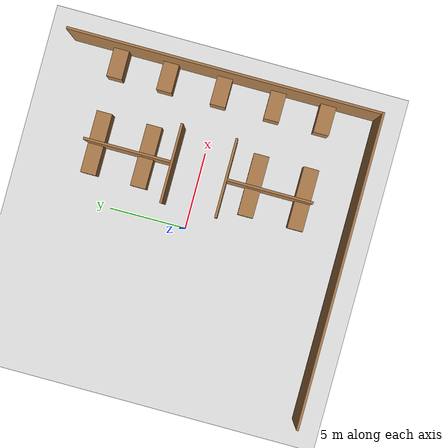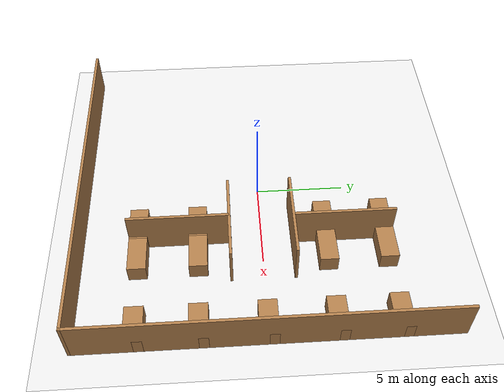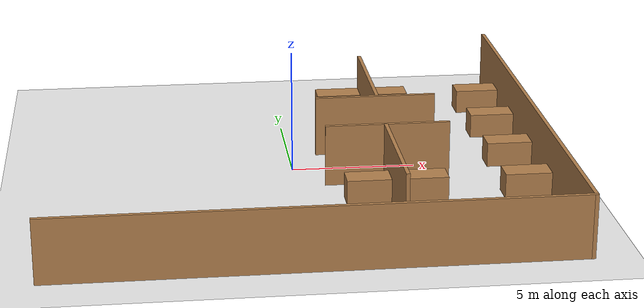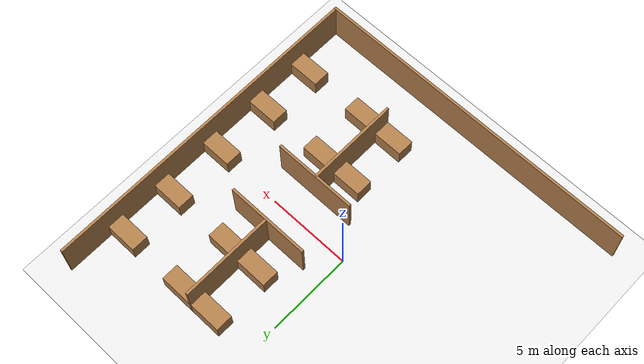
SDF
<sdf version="1.7">
 <world name="default">
  <model name="ground_plane">
   <static>1</static>
   <link name="link">
    <collision name="collision">
     <geometry><plane><normal>0 0 1</normal><size>100 100</size></plane></geometry>
     <surface>
      <contact><collide_bitmask>65535</collide_bitmask></contact>
      <friction><ode><mu>100</mu><mu2>50</mu2></ode></friction>
     </surface>
    </collision>
    <visual name="visual">
     <cast_shadows>0</cast_shadows>
     <geometry><plane><normal>0 0 1</normal><size>100 100</size></plane></geometry>
     <material>
      <script><uri>file://media/materials/scripts/gazebo.material</uri><name>Gazebo/White</name></script>
     </material>
    </visual>
   </link>
  </model>
  <model name="warehouse">
   <link name="Wall_10">
    <pose>-1.7 3.65 0 0 0 -1.5708</pose>
    <inertial>
     <mass>1</mass>
     <inertia><ixx>1</ixx><ixy>0</ixy><ixz>0</ixz><iyy>1</iyy><iyz>0</iyz><izz>1</izz></inertia>
    </inertial>
    <visual name="Wall_10_Visual">
     <pose>0 0 1.25 0 -0 0</pose>
     <geometry><box><size>5 0.15 2.5</size></box></geometry>
     <material>
      <script><uri>file://media/materials/scripts/gazebo.material</uri><name>Gazebo/Wood</name></script>
      <ambient>1 1 1 1</ambient>
      <shader type="pixel"><normal_map>__default__</normal_map></shader>
      <diffuse>1 1 1 1</diffuse>
      <specular>0.2 0.2 0.2 1</specular>
      <emissive>0 0 0 1</emissive>
     </material>
     <meta><layer>0</layer></meta>
    </visual>
    <collision name="Wall_10_Collision">
     <pose>0 0 1.25 0 -0 0</pose>
     <geometry><box><size>5 0.15 2.5</size></box></geometry>
     <surface>
      <friction>
       <ode><mu>1</mu><mu2>1</mu2><fdir1>0 0 0</fdir1><slip1>0</slip1><slip2>0</slip2></ode>
       <torsional>
        <coefficient>1</coefficient>
        <patch_radius>0</patch_radius>
        <surface_radius>0</surface_radius>
        <use_patch_radius>1</use_patch_radius>
        <ode><slip>0</slip></ode>
       </torsional>
      </friction>
      <bounce><restitution_coefficient>0</restitution_coefficient><threshold>1e+06</threshold></bounce>
      <contact>
       <collide_without_contact>0</collide_without_contact>
       <collide_without_contact_bitmask>1</collide_without_contact_bitmask>
       <collide_bitmask>1</collide_bitmask>
       <ode>
        <soft_cfm>0</soft_cfm>
        <soft_erp>0.2</soft_erp>
        <kp>1e+13</kp>
        <kd>1</kd>
        <max_vel>0.01</max_vel>
        <min_depth>0</min_depth>
       </ode>
       <bullet>
        <split_impulse>1</split_impulse>
        <split_impulse_penetration_threshold>-0.01</split_impulse_penetration_threshold>
        <soft_cfm>0</soft_cfm>
        <soft_erp>0.2</soft_erp>
        <kp>1e+13</kp>
        <kd>1</kd>
       </bullet>
      </contact>
     </surface>
    </collision>
   </link>
   <link name="Wall_22">
    <pose>1.75 3.65 0 0 0 -1.5708</pose>
    <inertial>
     <mass>1</mass>
     <inertia><ixx>1</ixx><ixy>0</ixy><ixz>0</ixz><iyy>1</iyy><iyz>0</iyz><izz>1</izz></inertia>
    </inertial>
    <visual name="Wall_22_Visual">
     <pose>0 0 1.25 0 -0 0</pose>
     <geometry><box><size>5 0.15 2.5</size></box></geometry>
     <material>
      <script><uri>file://media/materials/scripts/gazebo.material</uri><name>Gazebo/Wood</name></script>
      <ambient>1 1 1 1</ambient>
      <shader type="pixel"><normal_map>__default__</normal_map></shader>
      <diffuse>1 1 1 1</diffuse>
      <specular>0.2 0.2 0.2 1</specular>
      <emissive>0 0 0 1</emissive>
     </material>
     <meta><layer>0</layer></meta>
    </visual>
    <collision name="Wall_22_Collision">
     <pose>0 0 1.25 0 -0 0</pose>
     <geometry><box><size>5 0.15 2.5</size></box></geometry>
     <surface>
      <friction>
       <ode><mu>1</mu><mu2>1</mu2><fdir1>0 0 0</fdir1><slip1>0</slip1><slip2>0</slip2></ode>
       <torsional>
        <coefficient>1</coefficient>
        <patch_radius>0</patch_radius>
        <surface_radius>0</surface_radius>
        <use_patch_radius>1</use_patch_radius>
        <ode><slip>0</slip></ode>
       </torsional>
      </friction>
      <bounce><restitution_coefficient>0</restitution_coefficient><threshold>1e+06</threshold></bounce>
      <contact>
       <collide_without_contact>0</collide_without_contact>
       <collide_without_contact_bitmask>1</collide_without_contact_bitmask>
       <collide_bitmask>1</collide_bitmask>
       <ode>
        <soft_cfm>0</soft_cfm>
        <soft_erp>0.2</soft_erp>
        <kp>1e+13</kp>
        <kd>1</kd>
        <max_vel>0.01</max_vel>
        <min_depth>0</min_depth>
       </ode>
       <bullet>
        <split_impulse>1</split_impulse>
        <split_impulse_penetration_threshold>-0.01</split_impulse_penetration_threshold>
        <soft_cfm>0</soft_cfm>
        <soft_erp>0.2</soft_erp>
        <kp>1e+13</kp>
        <kd>1</kd>
       </bullet>
      </contact>
     </surface>
    </collision>
   </link>
   <link name="Wall_25">
    <pose>-4.5 3.725 0 0 -0 3.14159</pose>
    <inertial>
     <mass>1</mass>
     <inertia><ixx>1</ixx><ixy>0</ixy><ixz>0</ixz><iyy>1</iyy><iyz>0</iyz><izz>1</izz></inertia>
    </inertial>
    <visual name="Wall_25_Visual">
     <pose>0 0 1.25 0 -0 0</pose>
     <geometry><box><size>5.5 0.15 2.5</size></box></geometry>
     <material>
      <script><uri>file://media/materials/scripts/gazebo.material</uri><name>Gazebo/Wood</name></script>
      <ambient>1 1 1 1</ambient>
      <shader type="pixel"><normal_map>__default__</normal_map></shader>
      <diffuse>1 1 1 1</diffuse>
      <specular>0.2 0.2 0.2 1</specular>
      <emissive>0 0 0 1</emissive>
     </material>
     <meta><layer>0</layer></meta>
    </visual>
    <collision name="Wall_25_Collision">
     <pose>0 0 1.25 0 -0 0</pose>
     <geometry><box><size>5.5 0.15 2.5</size></box></geometry>
     <surface>
      <friction>
       <ode><mu>1</mu><mu2>1</mu2><fdir1>0 0 0</fdir1><slip1>0</slip1><slip2>0</slip2></ode>
       <torsional>
        <coefficient>1</coefficient>
        <patch_radius>0</patch_radius>
        <surface_radius>0</surface_radius>
        <use_patch_radius>1</use_patch_radius>
        <ode><slip>0</slip></ode>
       </torsional>
      </friction>
      <bounce><restitution_coefficient>0</restitution_coefficient><threshold>1e+06</threshold></bounce>
      <contact>
       <collide_without_contact>0</collide_without_contact>
       <collide_without_contact_bitmask>1</collide_without_contact_bitmask>
       <collide_bitmask>1</collide_bitmask>
       <ode>
        <soft_cfm>0</soft_cfm>
        <soft_erp>0.2</soft_erp>
        <kp>1e+13</kp>
        <kd>1</kd>
        <max_vel>0.01</max_vel>
        <min_depth>0</min_depth>
       </ode>
       <bullet>
        <split_impulse>1</split_impulse>
        <split_impulse_penetration_threshold>-0.01</split_impulse_penetration_threshold>
        <soft_cfm>0</soft_cfm>
        <soft_erp>0.2</soft_erp>
        <kp>1e+13</kp>
        <kd>1</kd>
       </bullet>
      </contact>
     </surface>
    </collision>
   </link>
   <link name="Wall_34">
    <pose>4.5 3.575 0 0 -0 0</pose>
    <inertial>
     <mass>1</mass>
     <inertia><ixx>1</ixx><ixy>0</ixy><ixz>0</ixz><iyy>1</iyy><iyz>0</iyz><izz>1</izz></inertia>
    </inertial>
    <visual name="Wall_34_Visual">
     <pose>0 0 1.25 0 -0 0</pose>
     <geometry><box><size>5.5 0.15 2.5</size></box></geometry>
     <material>
      <script><uri>file://media/materials/scripts/gazebo.material</uri><name>Gazebo/Wood</name></script>
      <ambient>1 1 1 1</ambient>
      <shader type="pixel"><normal_map>__default__</normal_map></shader>
      <diffuse>1 1 1 1</diffuse>
      <specular>0.2 0.2 0.2 1</specular>
      <emissive>0 0 0 1</emissive>
     </material>
     <meta><layer>0</layer></meta>
    </visual>
    <collision name="Wall_34_Collision">
     <pose>0 0 1.25 0 -0 0</pose>
     <geometry><box><size>5.5 0.15 2.5</size></box></geometry>
     <surface>
      <friction>
       <ode><mu>1</mu><mu2>1</mu2><fdir1>0 0 0</fdir1><slip1>0</slip1><slip2>0</slip2></ode>
       <torsional>
        <coefficient>1</coefficient>
        <patch_radius>0</patch_radius>
        <surface_radius>0</surface_radius>
        <use_patch_radius>1</use_patch_radius>
        <ode><slip>0</slip></ode>
       </torsional>
      </friction>
      <bounce><restitution_coefficient>0</restitution_coefficient><threshold>1e+06</threshold></bounce>
      <contact>
       <collide_without_contact>0</collide_without_contact>
       <collide_without_contact_bitmask>1</collide_without_contact_bitmask>
       <collide_bitmask>1</collide_bitmask>
       <ode>
        <soft_cfm>0</soft_cfm>
        <soft_erp>0.2</soft_erp>
        <kp>1e+13</kp>
        <kd>1</kd>
        <max_vel>0.01</max_vel>
        <min_depth>0</min_depth>
       </ode>
       <bullet>
        <split_impulse>1</split_impulse>
        <split_impulse_penetration_threshold>-0.01</split_impulse_penetration_threshold>
        <soft_cfm>0</soft_cfm>
        <soft_erp>0.2</soft_erp>
        <kp>1e+13</kp>
        <kd>1</kd>
       </bullet>
      </contact>
     </surface>
    </collision>
   </link>
   <link name="Wall_5">
    <pose>9.925 -0 0 0 -0 1.5708</pose>
    <visual name="Wall_5_Visual">
     <pose>0 0 1.25 0 -0 0</pose>
     <geometry><box><size>20 0.15 2.5</size></box></geometry>
     <material>
      <script><uri>file://media/materials/scripts/gazebo.material</uri><name>Gazebo/Wood</name></script>
      <ambient>1 1 1 1</ambient>
      <shader type="pixel"/>
     </material>
     <meta><layer>0</layer></meta>
    </visual>
    <collision name="Wall_5_Collision">
     <pose>0 0 1.25 0 -0 0</pose>
     <geometry><box><size>20 0.15 2.5</size></box></geometry>
     <surface>
      <friction>
       <ode><mu>1</mu><mu2>1</mu2><fdir1>0 0 0</fdir1><slip1>0</slip1><slip2>0</slip2></ode>
       <torsional>
        <coefficient>1</coefficient>
        <patch_radius>0</patch_radius>
        <surface_radius>0</surface_radius>
        <use_patch_radius>1</use_patch_radius>
        <ode><slip>0</slip></ode>
       </torsional>
      </friction>
      <bounce><restitution_coefficient>0</restitution_coefficient><threshold>1e+06</threshold></bounce>
      <contact>
       <collide_without_contact>0</collide_without_contact>
       <collide_without_contact_bitmask>1</collide_without_contact_bitmask>
       <collide_bitmask>1</collide_bitmask>
       <ode>
        <soft_cfm>0</soft_cfm>
        <soft_erp>0.2</soft_erp>
        <kp>1e+13</kp>
        <kd>1</kd>
        <max_vel>0.01</max_vel>
        <min_depth>0</min_depth>
       </ode>
       <bullet>
        <split_impulse>1</split_impulse>
        <split_impulse_penetration_threshold>-0.01</split_impulse_penetration_threshold>
        <soft_cfm>0</soft_cfm>
        <soft_erp>0.2</soft_erp>
        <kp>1e+13</kp>
        <kd>1</kd>
       </bullet>
      </contact>
     </surface>
    </collision>
   </link>
   <link name="Wall_6">
    <pose>0 9.925 0 0 -0 3.14159</pose>
    <visual name="Wall_6_Visual">
     <pose>0 0 1.25 0 -0 0</pose>
     <geometry><box><size>20 0.15 2.5</size></box></geometry>
     <material>
      <script><uri>file://media/materials/scripts/gazebo.material</uri><name>Gazebo/Wood</name></script>
      <ambient>1 1 1 1</ambient>
      <shader type="pixel"/>
     </material>
     <meta><layer>0</layer></meta>
    </visual>
    <collision name="Wall_6_Collision">
     <pose>0 0 1.25 0 -0 0</pose>
     <geometry><box><size>20 0.15 2.5</size></box></geometry>
     <surface>
      <friction>
       <ode><mu>1</mu><mu2>1</mu2><fdir1>0 0 0</fdir1><slip1>0</slip1><slip2>0</slip2></ode>
       <torsional>
        <coefficient>1</coefficient>
        <patch_radius>0</patch_radius>
        <surface_radius>0</surface_radius>
        <use_patch_radius>1</use_patch_radius>
        <ode><slip>0</slip></ode>
       </torsional>
      </friction>
      <bounce><restitution_coefficient>0</restitution_coefficient><threshold>1e+06</threshold></bounce>
      <contact>
       <collide_without_contact>0</collide_without_contact>
       <collide_without_contact_bitmask>1</collide_without_contact_bitmask>
       <collide_bitmask>1</collide_bitmask>
       <ode>
        <soft_cfm>0</soft_cfm>
        <soft_erp>0.2</soft_erp>
        <kp>1e+13</kp>
        <kd>1</kd>
        <max_vel>0.01</max_vel>
        <min_depth>0</min_depth>
       </ode>
       <bullet>
        <split_impulse>1</split_impulse>
        <split_impulse_penetration_threshold>-0.01</split_impulse_penetration_threshold>
        <soft_cfm>0</soft_cfm>
        <soft_erp>0.2</soft_erp>
        <kp>1e+13</kp>
        <kd>1</kd>
       </bullet>
      </contact>
     </surface>
    </collision>
   </link>
   <link name="link_1_clone_12">
    <inertial>
     <mass>1</mass>
     <inertia>
      <ixx>0.166667</ixx>
      <ixy>0</ixy>
      <ixz>0</ixz>
      <iyy>0.166667</iyy>
      <iyz>0</iyz>
      <izz>0.166667</izz>
     </inertia>
    </inertial>
    <pose>-6.75 4.75 0.5 0 -0 3.14</pose>
    <visual name="visual">
     <geometry><box><size>1 2 1</size></box></geometry>
     <material>
      <lighting>1</lighting>
      <script><uri>file://media/materials/scripts/gazebo.material</uri><name>Gazebo/Wood</name></script>
      <shader type="pixel"><normal_map>__default__</normal_map></shader>
      <ambient>0.3 0.3 0.3 1</ambient>
      <diffuse>0.7 0.7 0.7 1</diffuse>
      <specular>0.01 0.01 0.01 1</specular>
      <emissive>0 0 0 1</emissive>
     </material>
    </visual>
    <collision name="collision">
     <geometry><box><size>1 2 1</size></box></geometry>
     <surface>
      <friction>
       <ode><mu>1</mu><mu2>1</mu2><fdir1>0 0 0</fdir1><slip1>0</slip1><slip2>0</slip2></ode>
       <torsional>
        <coefficient>1</coefficient>
        <patch_radius>0</patch_radius>
        <surface_radius>0</surface_radius>
        <use_patch_radius>1</use_patch_radius>
        <ode><slip>0</slip></ode>
       </torsional>
      </friction>
      <bounce><restitution_coefficient>0</restitution_coefficient><threshold>1e+06</threshold></bounce>
      <contact>
       <collide_without_contact>0</collide_without_contact>
       <collide_without_contact_bitmask>1</collide_without_contact_bitmask>
       <collide_bitmask>1</collide_bitmask>
       <ode>
        <soft_cfm>0</soft_cfm>
        <soft_erp>0.2</soft_erp>
        <kp>1e+13</kp>
        <kd>1</kd>
        <max_vel>0.01</max_vel>
        <min_depth>0</min_depth>
       </ode>
       <bullet>
        <split_impulse>1</split_impulse>
        <split_impulse_penetration_threshold>-0.01</split_impulse_penetration_threshold>
        <soft_cfm>0</soft_cfm>
        <soft_erp>0.2</soft_erp>
        <kp>1e+13</kp>
        <kd>1</kd>
       </bullet>
      </contact>
     </surface>
    </collision>
   </link>
   <link name="link_1_clone_13">
    <inertial>
     <mass>1</mass>
     <inertia>
      <ixx>0.166667</ixx>
      <ixy>0</ixy>
      <ixz>0</ixz>
      <iyy>0.166667</iyy>
      <iyz>0</iyz>
      <izz>0.166667</izz>
     </inertia>
    </inertial>
    <pose>-3.5 4.75 0.5 0 -0 3.14</pose>
    <visual name="visual">
     <geometry><box><size>1 2 1</size></box></geometry>
     <material>
      <lighting>1</lighting>
      <script><uri>file://media/materials/scripts/gazebo.material</uri><name>Gazebo/Wood</name></script>
      <shader type="pixel"><normal_map>__default__</normal_map></shader>
      <ambient>0.3 0.3 0.3 1</ambient>
      <diffuse>0.7 0.7 0.7 1</diffuse>
      <specular>0.01 0.01 0.01 1</specular>
      <emissive>0 0 0 1</emissive>
     </material>
    </visual>
    <collision name="collision">
     <geometry><box><size>1 2 1</size></box></geometry>
     <surface>
      <friction>
       <ode><mu>1</mu><mu2>1</mu2><fdir1>0 0 0</fdir1><slip1>0</slip1><slip2>0</slip2></ode>
       <torsional>
        <coefficient>1</coefficient>
        <patch_radius>0</patch_radius>
        <surface_radius>0</surface_radius>
        <use_patch_radius>1</use_patch_radius>
        <ode><slip>0</slip></ode>
       </torsional>
      </friction>
      <bounce><restitution_coefficient>0</restitution_coefficient><threshold>1e+06</threshold></bounce>
      <contact>
       <collide_without_contact>0</collide_without_contact>
       <collide_without_contact_bitmask>1</collide_without_contact_bitmask>
       <collide_bitmask>1</collide_bitmask>
       <ode>
        <soft_cfm>0</soft_cfm>
        <soft_erp>0.2</soft_erp>
        <kp>1e+13</kp>
        <kd>1</kd>
        <max_vel>0.01</max_vel>
        <min_depth>0</min_depth>
       </ode>
       <bullet>
        <split_impulse>1</split_impulse>
        <split_impulse_penetration_threshold>-0.01</split_impulse_penetration_threshold>
        <soft_cfm>0</soft_cfm>
        <soft_erp>0.2</soft_erp>
        <kp>1e+13</kp>
        <kd>1</kd>
       </bullet>
      </contact>
     </surface>
    </collision>
   </link>
   <link name="link_1_clone_14">
    <inertial>
     <mass>1</mass>
     <inertia>
      <ixx>0.166667</ixx>
      <ixy>0</ixy>
      <ixz>0</ixz>
      <iyy>0.166667</iyy>
      <iyz>0</iyz>
      <izz>0.166667</izz>
     </inertia>
    </inertial>
    <pose>3.5 4.75 0.5 0 -0 3.14</pose>
    <visual name="visual">
     <geometry><box><size>1 2 1</size></box></geometry>
     <material>
      <lighting>1</lighting>
      <script><uri>file://media/materials/scripts/gazebo.material</uri><name>Gazebo/Wood</name></script>
      <shader type="pixel"><normal_map>__default__</normal_map></shader>
      <ambient>0.3 0.3 0.3 1</ambient>
      <diffuse>0.7 0.7 0.7 1</diffuse>
      <specular>0.01 0.01 0.01 1</specular>
      <emissive>0 0 0 1</emissive>
     </material>
    </visual>
    <collision name="collision">
     <geometry><box><size>1 2 1</size></box></geometry>
     <surface>
      <friction>
       <ode><mu>1</mu><mu2>1</mu2><fdir1>0 0 0</fdir1><slip1>0</slip1><slip2>0</slip2></ode>
       <torsional>
        <coefficient>1</coefficient>
        <patch_radius>0</patch_radius>
        <surface_radius>0</surface_radius>
        <use_patch_radius>1</use_patch_radius>
        <ode><slip>0</slip></ode>
       </torsional>
      </friction>
      <bounce><restitution_coefficient>0</restitution_coefficient><threshold>1e+06</threshold></bounce>
      <contact>
       <collide_without_contact>0</collide_without_contact>
       <collide_without_contact_bitmask>1</collide_without_contact_bitmask>
       <collide_bitmask>1</collide_bitmask>
       <ode>
        <soft_cfm>0</soft_cfm>
        <soft_erp>0.2</soft_erp>
        <kp>1e+13</kp>
        <kd>1</kd>
        <max_vel>0.01</max_vel>
        <min_depth>0</min_depth>
       </ode>
       <bullet>
        <split_impulse>1</split_impulse>
        <split_impulse_penetration_threshold>-0.01</split_impulse_penetration_threshold>
        <soft_cfm>0</soft_cfm>
        <soft_erp>0.2</soft_erp>
        <kp>1e+13</kp>
        <kd>1</kd>
       </bullet>
      </contact>
     </surface>
    </collision>
   </link>
   <link name="link_1_clone_15">
    <inertial>
     <mass>1</mass>
     <inertia>
      <ixx>0.166667</ixx>
      <ixy>0</ixy>
      <ixz>0</ixz>
      <iyy>0.166667</iyy>
      <iyz>0</iyz>
      <izz>0.166667</izz>
     </inertia>
    </inertial>
    <pose>6.75 4.75 0.5 0 -0 3.14</pose>
    <visual name="visual">
     <geometry><box><size>1 2 1</size></box></geometry>
     <material>
      <lighting>1</lighting>
      <script><uri>file://media/materials/scripts/gazebo.material</uri><name>Gazebo/Wood</name></script>
      <shader type="pixel"><normal_map>__default__</normal_map></shader>
      <ambient>0.3 0.3 0.3 1</ambient>
      <diffuse>0.7 0.7 0.7 1</diffuse>
      <specular>0.01 0.01 0.01 1</specular>
      <emissive>0 0 0 1</emissive>
     </material>
    </visual>
    <collision name="collision">
     <geometry><box><size>1 2 1</size></box></geometry>
     <surface>
      <friction>
       <ode><mu>1</mu><mu2>1</mu2><fdir1>0 0 0</fdir1><slip1>0</slip1><slip2>0</slip2></ode>
       <torsional>
        <coefficient>1</coefficient>
        <patch_radius>0</patch_radius>
        <surface_radius>0</surface_radius>
        <use_patch_radius>1</use_patch_radius>
        <ode><slip>0</slip></ode>
       </torsional>
      </friction>
      <bounce><restitution_coefficient>0</restitution_coefficient><threshold>1e+06</threshold></bounce>
      <contact>
       <collide_without_contact>0</collide_without_contact>
       <collide_without_contact_bitmask>1</collide_without_contact_bitmask>
       <collide_bitmask>1</collide_bitmask>
       <ode>
        <soft_cfm>0</soft_cfm>
        <soft_erp>0.2</soft_erp>
        <kp>1e+13</kp>
        <kd>1</kd>
        <max_vel>0.01</max_vel>
        <min_depth>0</min_depth>
       </ode>
       <bullet>
        <split_impulse>1</split_impulse>
        <split_impulse_penetration_threshold>-0.01</split_impulse_penetration_threshold>
        <soft_cfm>0</soft_cfm>
        <soft_erp>0.2</soft_erp>
        <kp>1e+13</kp>
        <kd>1</kd>
       </bullet>
      </contact>
     </surface>
    </collision>
   </link>
   <link name="link_1_clone_16">
    <inertial>
     <mass>1</mass>
     <inertia>
      <ixx>0.166667</ixx>
      <ixy>0</ixy>
      <ixz>0</ixz>
      <iyy>0.166667</iyy>
      <iyz>0</iyz>
      <izz>0.166667</izz>
     </inertia>
    </inertial>
    <pose>-6.75 2.75 0.5 0 -0 3.14</pose>
    <visual name="visual">
     <geometry><box><size>1 2 1</size></box></geometry>
     <material>
      <lighting>1</lighting>
      <script><uri>file://media/materials/scripts/gazebo.material</uri><name>Gazebo/Wood</name></script>
      <shader type="pixel"><normal_map>__default__</normal_map></shader>
      <ambient>0.3 0.3 0.3 1</ambient>
      <diffuse>0.7 0.7 0.7 1</diffuse>
      <specular>0.01 0.01 0.01 1</specular>
      <emissive>0 0 0 1</emissive>
     </material>
    </visual>
    <collision name="collision">
     <geometry><box><size>1 2 1</size></box></geometry>
     <surface>
      <friction>
       <ode><mu>1</mu><mu2>1</mu2><fdir1>0 0 0</fdir1><slip1>0</slip1><slip2>0</slip2></ode>
       <torsional>
        <coefficient>1</coefficient>
        <patch_radius>0</patch_radius>
        <surface_radius>0</surface_radius>
        <use_patch_radius>1</use_patch_radius>
        <ode><slip>0</slip></ode>
       </torsional>
      </friction>
      <bounce><restitution_coefficient>0</restitution_coefficient><threshold>1e+06</threshold></bounce>
      <contact>
       <collide_without_contact>0</collide_without_contact>
       <collide_without_contact_bitmask>1</collide_without_contact_bitmask>
       <collide_bitmask>1</collide_bitmask>
       <ode>
        <soft_cfm>0</soft_cfm>
        <soft_erp>0.2</soft_erp>
        <kp>1e+13</kp>
        <kd>1</kd>
        <max_vel>0.01</max_vel>
        <min_depth>0</min_depth>
       </ode>
       <bullet>
        <split_impulse>1</split_impulse>
        <split_impulse_penetration_threshold>-0.01</split_impulse_penetration_threshold>
        <soft_cfm>0</soft_cfm>
        <soft_erp>0.2</soft_erp>
        <kp>1e+13</kp>
        <kd>1</kd>
       </bullet>
      </contact>
     </surface>
    </collision>
   </link>
   <link name="link_1_clone_17">
    <inertial>
     <mass>1</mass>
     <inertia>
      <ixx>0.166667</ixx>
      <ixy>0</ixy>
      <ixz>0</ixz>
      <iyy>0.166667</iyy>
      <iyz>0</iyz>
      <izz>0.166667</izz>
     </inertia>
    </inertial>
    <pose>-3.5 2.75 0.5 0 -0 3.14</pose>
    <visual name="visual">
     <geometry><box><size>1 2 1</size></box></geometry>
     <material>
      <lighting>1</lighting>
      <script><uri>file://media/materials/scripts/gazebo.material</uri><name>Gazebo/Wood</name></script>
      <shader type="pixel"><normal_map>__default__</normal_map></shader>
      <ambient>0.3 0.3 0.3 1</ambient>
      <diffuse>0.7 0.7 0.7 1</diffuse>
      <specular>0.01 0.01 0.01 1</specular>
      <emissive>0 0 0 1</emissive>
     </material>
    </visual>
    <collision name="collision">
     <geometry><box><size>1 2 1</size></box></geometry>
     <surface>
      <friction>
       <ode><mu>1</mu><mu2>1</mu2><fdir1>0 0 0</fdir1><slip1>0</slip1><slip2>0</slip2></ode>
       <torsional>
        <coefficient>1</coefficient>
        <patch_radius>0</patch_radius>
        <surface_radius>0</surface_radius>
        <use_patch_radius>1</use_patch_radius>
        <ode><slip>0</slip></ode>
       </torsional>
      </friction>
      <bounce><restitution_coefficient>0</restitution_coefficient><threshold>1e+06</threshold></bounce>
      <contact>
       <collide_without_contact>0</collide_without_contact>
       <collide_without_contact_bitmask>1</collide_without_contact_bitmask>
       <collide_bitmask>1</collide_bitmask>
       <ode>
        <soft_cfm>0</soft_cfm>
        <soft_erp>0.2</soft_erp>
        <kp>1e+13</kp>
        <kd>1</kd>
        <max_vel>0.01</max_vel>
        <min_depth>0</min_depth>
       </ode>
       <bullet>
        <split_impulse>1</split_impulse>
        <split_impulse_penetration_threshold>-0.01</split_impulse_penetration_threshold>
        <soft_cfm>0</soft_cfm>
        <soft_erp>0.2</soft_erp>
        <kp>1e+13</kp>
        <kd>1</kd>
       </bullet>
      </contact>
     </surface>
    </collision>
   </link>
   <link name="link_1_clone_18">
    <inertial>
     <mass>1</mass>
     <inertia>
      <ixx>0.166667</ixx>
      <ixy>0</ixy>
      <ixz>0</ixz>
      <iyy>0.166667</iyy>
      <iyz>0</iyz>
      <izz>0.166667</izz>
     </inertia>
    </inertial>
    <pose>3.5 2.75 0.5 0 -0 3.14</pose>
    <visual name="visual">
     <geometry><box><size>1 2 1</size></box></geometry>
     <material>
      <lighting>1</lighting>
      <script><uri>file://media/materials/scripts/gazebo.material</uri><name>Gazebo/Wood</name></script>
      <shader type="pixel"><normal_map>__default__</normal_map></shader>
      <ambient>0.3 0.3 0.3 1</ambient>
      <diffuse>0.7 0.7 0.7 1</diffuse>
      <specular>0.01 0.01 0.01 1</specular>
      <emissive>0 0 0 1</emissive>
     </material>
    </visual>
    <collision name="collision">
     <geometry><box><size>1 2 1</size></box></geometry>
     <surface>
      <friction>
       <ode><mu>1</mu><mu2>1</mu2><fdir1>0 0 0</fdir1><slip1>0</slip1><slip2>0</slip2></ode>
       <torsional>
        <coefficient>1</coefficient>
        <patch_radius>0</patch_radius>
        <surface_radius>0</surface_radius>
        <use_patch_radius>1</use_patch_radius>
        <ode><slip>0</slip></ode>
       </torsional>
      </friction>
      <bounce><restitution_coefficient>0</restitution_coefficient><threshold>1e+06</threshold></bounce>
      <contact>
       <collide_without_contact>0</collide_without_contact>
       <collide_without_contact_bitmask>1</collide_without_contact_bitmask>
       <collide_bitmask>1</collide_bitmask>
       <ode>
        <soft_cfm>0</soft_cfm>
        <soft_erp>0.2</soft_erp>
        <kp>1e+13</kp>
        <kd>1</kd>
        <max_vel>0.01</max_vel>
        <min_depth>0</min_depth>
       </ode>
       <bullet>
        <split_impulse>1</split_impulse>
        <split_impulse_penetration_threshold>-0.01</split_impulse_penetration_threshold>
        <soft_cfm>0</soft_cfm>
        <soft_erp>0.2</soft_erp>
        <kp>1e+13</kp>
        <kd>1</kd>
       </bullet>
      </contact>
     </surface>
    </collision>
   </link>
   <link name="link_1_clone_19">
    <inertial>
     <mass>1</mass>
     <inertia>
      <ixx>0.166667</ixx>
      <ixy>0</ixy>
      <ixz>0</ixz>
      <iyy>0.166667</iyy>
      <iyz>0</iyz>
      <izz>0.166667</izz>
     </inertia>
    </inertial>
    <pose>6.75 2.75 0.5 0 -0 3.14</pose>
    <visual name="visual">
     <geometry><box><size>1 2 1</size></box></geometry>
     <material>
      <lighting>1</lighting>
      <script><uri>file://media/materials/scripts/gazebo.material</uri><name>Gazebo/Wood</name></script>
      <shader type="pixel"><normal_map>__default__</normal_map></shader>
      <ambient>0.3 0.3 0.3 1</ambient>
      <diffuse>0.7 0.7 0.7 1</diffuse>
      <specular>0.01 0.01 0.01 1</specular>
      <emissive>0 0 0 1</emissive>
     </material>
    </visual>
    <collision name="collision">
     <geometry><box><size>1 2 1</size></box></geometry>
     <surface>
      <friction>
       <ode><mu>1</mu><mu2>1</mu2><fdir1>0 0 0</fdir1><slip1>0</slip1><slip2>0</slip2></ode>
       <torsional>
        <coefficient>1</coefficient>
        <patch_radius>0</patch_radius>
        <surface_radius>0</surface_radius>
        <use_patch_radius>1</use_patch_radius>
        <ode><slip>0</slip></ode>
       </torsional>
      </friction>
      <bounce><restitution_coefficient>0</restitution_coefficient><threshold>1e+06</threshold></bounce>
      <contact>
       <collide_without_contact>0</collide_without_contact>
       <collide_without_contact_bitmask>1</collide_without_contact_bitmask>
       <collide_bitmask>1</collide_bitmask>
       <ode>
        <soft_cfm>0</soft_cfm>
        <soft_erp>0.2</soft_erp>
        <kp>1e+13</kp>
        <kd>1</kd>
        <max_vel>0.01</max_vel>
        <min_depth>0</min_depth>
       </ode>
       <bullet>
        <split_impulse>1</split_impulse>
        <split_impulse_penetration_threshold>-0.01</split_impulse_penetration_threshold>
        <soft_cfm>0</soft_cfm>
        <soft_erp>0.2</soft_erp>
        <kp>1e+13</kp>
        <kd>1</kd>
       </bullet>
      </contact>
     </surface>
    </collision>
   </link>
   <link name="link_1_clone_20">
    <inertial>
     <mass>1</mass>
     <inertia>
      <ixx>0.166667</ixx>
      <ixy>0</ixy>
      <ixz>0</ixz>
      <iyy>0.166667</iyy>
      <iyz>0</iyz>
      <izz>0.166667</izz>
     </inertia>
    </inertial>
    <pose>-6.75 9 0.5 0 -0 3.14</pose>
    <visual name="visual">
     <geometry><box><size>1 2 1</size></box></geometry>
     <material>
      <lighting>1</lighting>
      <script><uri>file://media/materials/scripts/gazebo.material</uri><name>Gazebo/Wood</name></script>
      <shader type="pixel"><normal_map>__default__</normal_map></shader>
      <ambient>0.3 0.3 0.3 1</ambient>
      <diffuse>0.7 0.7 0.7 1</diffuse>
      <specular>0.01 0.01 0.01 1</specular>
      <emissive>0 0 0 1</emissive>
     </material>
    </visual>
    <collision name="collision">
     <geometry><box><size>1 2 1</size></box></geometry>
     <surface>
      <friction>
       <ode><mu>1</mu><mu2>1</mu2><fdir1>0 0 0</fdir1><slip1>0</slip1><slip2>0</slip2></ode>
       <torsional>
        <coefficient>1</coefficient>
        <patch_radius>0</patch_radius>
        <surface_radius>0</surface_radius>
        <use_patch_radius>1</use_patch_radius>
        <ode><slip>0</slip></ode>
       </torsional>
      </friction>
      <bounce><restitution_coefficient>0</restitution_coefficient><threshold>1e+06</threshold></bounce>
      <contact>
       <collide_without_contact>0</collide_without_contact>
       <collide_without_contact_bitmask>1</collide_without_contact_bitmask>
       <collide_bitmask>1</collide_bitmask>
       <ode>
        <soft_cfm>0</soft_cfm>
        <soft_erp>0.2</soft_erp>
        <kp>1e+13</kp>
        <kd>1</kd>
        <max_vel>0.01</max_vel>
        <min_depth>0</min_depth>
       </ode>
       <bullet>
        <split_impulse>1</split_impulse>
        <split_impulse_penetration_threshold>-0.01</split_impulse_penetration_threshold>
        <soft_cfm>0</soft_cfm>
        <soft_erp>0.2</soft_erp>
        <kp>1e+13</kp>
        <kd>1</kd>
       </bullet>
      </contact>
     </surface>
    </collision>
   </link>
   <link name="link_1_clone_21">
    <inertial>
     <mass>1</mass>
     <inertia>
      <ixx>0.166667</ixx>
      <ixy>0</ixy>
      <ixz>0</ixz>
      <iyy>0.166667</iyy>
      <iyz>0</iyz>
      <izz>0.166667</izz>
     </inertia>
    </inertial>
    <pose>-3.5 9 0.5 0 -0 3.14</pose>
    <visual name="visual">
     <geometry><box><size>1 2 1</size></box></geometry>
     <material>
      <lighting>1</lighting>
      <script><uri>file://media/materials/scripts/gazebo.material</uri><name>Gazebo/Wood</name></script>
      <shader type="pixel"><normal_map>__default__</normal_map></shader>
      <ambient>0.3 0.3 0.3 1</ambient>
      <diffuse>0.7 0.7 0.7 1</diffuse>
      <specular>0.01 0.01 0.01 1</specular>
      <emissive>0 0 0 1</emissive>
     </material>
    </visual>
    <collision name="collision">
     <geometry><box><size>1 2 1</size></box></geometry>
     <surface>
      <friction>
       <ode><mu>1</mu><mu2>1</mu2><fdir1>0 0 0</fdir1><slip1>0</slip1><slip2>0</slip2></ode>
       <torsional>
        <coefficient>1</coefficient>
        <patch_radius>0</patch_radius>
        <surface_radius>0</surface_radius>
        <use_patch_radius>1</use_patch_radius>
        <ode><slip>0</slip></ode>
       </torsional>
      </friction>
      <bounce><restitution_coefficient>0</restitution_coefficient><threshold>1e+06</threshold></bounce>
      <contact>
       <collide_without_contact>0</collide_without_contact>
       <collide_without_contact_bitmask>1</collide_without_contact_bitmask>
       <collide_bitmask>1</collide_bitmask>
       <ode>
        <soft_cfm>0</soft_cfm>
        <soft_erp>0.2</soft_erp>
        <kp>1e+13</kp>
        <kd>1</kd>
        <max_vel>0.01</max_vel>
        <min_depth>0</min_depth>
       </ode>
       <bullet>
        <split_impulse>1</split_impulse>
        <split_impulse_penetration_threshold>-0.01</split_impulse_penetration_threshold>
        <soft_cfm>0</soft_cfm>
        <soft_erp>0.2</soft_erp>
        <kp>1e+13</kp>
        <kd>1</kd>
       </bullet>
      </contact>
     </surface>
    </collision>
   </link>
   <link name="link_1_clone_22">
    <inertial>
     <mass>1</mass>
     <inertia>
      <ixx>0.166667</ixx>
      <ixy>0</ixy>
      <ixz>0</ixz>
      <iyy>0.166667</iyy>
      <iyz>0</iyz>
      <izz>0.166667</izz>
     </inertia>
    </inertial>
    <pose>0 9 0.5 0 -0 3.14</pose>
    <visual name="visual">
     <geometry><box><size>1 2 1</size></box></geometry>
     <material>
      <lighting>1</lighting>
      <script><uri>file://media/materials/scripts/gazebo.material</uri><name>Gazebo/Wood</name></script>
      <shader type="pixel"><normal_map>__default__</normal_map></shader>
      <ambient>0.3 0.3 0.3 1</ambient>
      <diffuse>0.7 0.7 0.7 1</diffuse>
      <specular>0.01 0.01 0.01 1</specular>
      <emissive>0 0 0 1</emissive>
     </material>
    </visual>
    <collision name="collision">
     <geometry><box><size>1 2 1</size></box></geometry>
     <surface>
      <friction>
       <ode><mu>1</mu><mu2>1</mu2><fdir1>0 0 0</fdir1><slip1>0</slip1><slip2>0</slip2></ode>
       <torsional>
        <coefficient>1</coefficient>
        <patch_radius>0</patch_radius>
        <surface_radius>0</surface_radius>
        <use_patch_radius>1</use_patch_radius>
        <ode><slip>0</slip></ode>
       </torsional>
      </friction>
      <bounce><restitution_coefficient>0</restitution_coefficient><threshold>1e+06</threshold></bounce>
      <contact>
       <collide_without_contact>0</collide_without_contact>
       <collide_without_contact_bitmask>1</collide_without_contact_bitmask>
       <collide_bitmask>1</collide_bitmask>
       <ode>
        <soft_cfm>0</soft_cfm>
        <soft_erp>0.2</soft_erp>
        <kp>1e+13</kp>
        <kd>1</kd>
        <max_vel>0.01</max_vel>
        <min_depth>0</min_depth>
       </ode>
       <bullet>
        <split_impulse>1</split_impulse>
        <split_impulse_penetration_threshold>-0.01</split_impulse_penetration_threshold>
        <soft_cfm>0</soft_cfm>
        <soft_erp>0.2</soft_erp>
        <kp>1e+13</kp>
        <kd>1</kd>
       </bullet>
      </contact>
     </surface>
    </collision>
   </link>
   <link name="link_1_clone_23">
    <inertial>
     <mass>1</mass>
     <inertia>
      <ixx>0.166667</ixx>
      <ixy>0</ixy>
      <ixz>0</ixz>
      <iyy>0.166667</iyy>
      <iyz>0</iyz>
      <izz>0.166667</izz>
     </inertia>
    </inertial>
    <pose>3.5 9 0.5 0 -0 3.14</pose>
    <visual name="visual">
     <geometry><box><size>1 2 1</size></box></geometry>
     <material>
      <lighting>1</lighting>
      <script><uri>file://media/materials/scripts/gazebo.material</uri><name>Gazebo/Wood</name></script>
      <shader type="pixel"><normal_map>__default__</normal_map></shader>
      <ambient>0.3 0.3 0.3 1</ambient>
      <diffuse>0.7 0.7 0.7 1</diffuse>
      <specular>0.01 0.01 0.01 1</specular>
      <emissive>0 0 0 1</emissive>
     </material>
    </visual>
    <collision name="collision">
     <geometry><box><size>1 2 1</size></box></geometry>
     <surface>
      <friction>
       <ode><mu>1</mu><mu2>1</mu2><fdir1>0 0 0</fdir1><slip1>0</slip1><slip2>0</slip2></ode>
       <torsional>
        <coefficient>1</coefficient>
        <patch_radius>0</patch_radius>
        <surface_radius>0</surface_radius>
        <use_patch_radius>1</use_patch_radius>
        <ode><slip>0</slip></ode>
       </torsional>
      </friction>
      <bounce><restitution_coefficient>0</restitution_coefficient><threshold>1e+06</threshold></bounce>
      <contact>
       <collide_without_contact>0</collide_without_contact>
       <collide_without_contact_bitmask>1</collide_without_contact_bitmask>
       <collide_bitmask>1</collide_bitmask>
       <ode>
        <soft_cfm>0</soft_cfm>
        <soft_erp>0.2</soft_erp>
        <kp>1e+13</kp>
        <kd>1</kd>
        <max_vel>0.01</max_vel>
        <min_depth>0</min_depth>
       </ode>
       <bullet>
        <split_impulse>1</split_impulse>
        <split_impulse_penetration_threshold>-0.01</split_impulse_penetration_threshold>
        <soft_cfm>0</soft_cfm>
        <soft_erp>0.2</soft_erp>
        <kp>1e+13</kp>
        <kd>1</kd>
       </bullet>
      </contact>
     </surface>
    </collision>
   </link>
   <link name="link_1_clone_24">
    <inertial>
     <mass>1</mass>
     <inertia>
      <ixx>0.166667</ixx>
      <ixy>0</ixy>
      <ixz>0</ixz>
      <iyy>0.166667</iyy>
      <iyz>0</iyz>
      <izz>0.166667</izz>
     </inertia>
    </inertial>
    <pose>6.75 9 0.5 0 -0 3.14</pose>
    <visual name="visual">
     <geometry><box><size>1 2 1</size></box></geometry>
     <material>
      <lighting>1</lighting>
      <script><uri>file://media/materials/scripts/gazebo.material</uri><name>Gazebo/Wood</name></script>
      <shader type="pixel"><normal_map>__default__</normal_map></shader>
      <ambient>0.3 0.3 0.3 1</ambient>
      <diffuse>0.7 0.7 0.7 1</diffuse>
      <specular>0.01 0.01 0.01 1</specular>
      <emissive>0 0 0 1</emissive>
     </material>
    </visual>
    <collision name="collision">
     <geometry><box><size>1 2 1</size></box></geometry>
     <surface>
      <friction>
       <ode><mu>1</mu><mu2>1</mu2><fdir1>0 0 0</fdir1><slip1>0</slip1><slip2>0</slip2></ode>
       <torsional>
        <coefficient>1</coefficient>
        <patch_radius>0</patch_radius>
        <surface_radius>0</surface_radius>
        <use_patch_radius>1</use_patch_radius>
        <ode><slip>0</slip></ode>
       </torsional>
      </friction>
      <bounce><restitution_coefficient>0</restitution_coefficient><threshold>1e+06</threshold></bounce>
      <contact>
       <collide_without_contact>0</collide_without_contact>
       <collide_without_contact_bitmask>1</collide_without_contact_bitmask>
       <collide_bitmask>1</collide_bitmask>
       <ode>
        <soft_cfm>0</soft_cfm>
        <soft_erp>0.2</soft_erp>
        <kp>1e+13</kp>
        <kd>1</kd>
        <max_vel>0.01</max_vel>
        <min_depth>0</min_depth>
       </ode>
       <bullet>
        <split_impulse>1</split_impulse>
        <split_impulse_penetration_threshold>-0.01</split_impulse_penetration_threshold>
        <soft_cfm>0</soft_cfm>
        <soft_erp>0.2</soft_erp>
        <kp>1e+13</kp>
        <kd>1</kd>
       </bullet>
      </contact>
     </surface>
    </collision>
   </link>
   <static>1</static>
   <pose>0 0 0 0 0 -1.57</pose>
  </model>
 </world>
</sdf>
